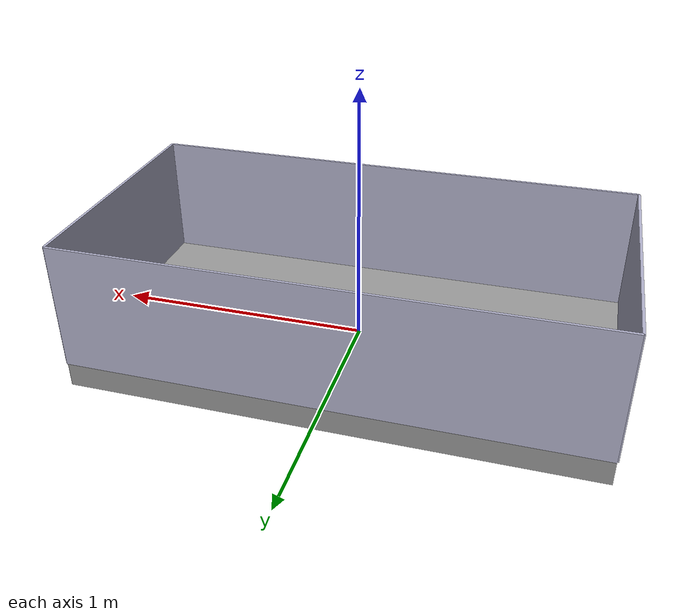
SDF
<sdf version="1.6">
 <world name="swimming_pool">
  <gravity>0 0 -9.81</gravity>
  <physics type="ode">
   <max_step_size>0.001</max_step_size>
   <ode>
    <solver>
     <type>world</type>
     <iters>300</iters>
     <sor>1.3</sor>
     <use_dynamic_moi_rescaling>1</use_dynamic_moi_rescaling>
    </solver>
   </ode>
  </physics>
  <include><uri>model://sun</uri></include>
  <model name="swimming_pool">
   <static>true</static>
   <link name="floor">
    <pose>0.0 0.0 -0.05 0.0 0.0 0.0</pose>
    <inertial>
     <mass>0</mass>
     <inertia><ixx>0</ixx><ixy>0</ixy><ixz>0</ixz><iyy>0</iyy><iyz>0</iyz><izz>0</izz></inertia>
    </inertial>
    <collision name="floor_collision"><geometry><box><size>2.01 1.01 0.1</size></box></geometry></collision>
    <visual name="floor_visual">
     <geometry><box><size>2.01 1.01 0.1</size></box></geometry>
     <material><ambient>0.6 0.6 0.6 1</ambient><diffuse>0.6 0.6 0.6 1</diffuse></material>
    </visual>
   </link>
   <link name="side_x_neg">
    <pose>-1.0055 0.0 0.25 0.0 0.0 0.0</pose>
    <inertial>
     <mass>0</mass>
     <inertia><ixx>0</ixx><ixy>0</ixy><ixz>0</ixz><iyy>0</iyy><iyz>0</iyz><izz>0</izz></inertia>
    </inertial>
    <collision name="side_x_neg_collision"><geometry><box><size>0.01 1.01 0.5</size></box></geometry></collision>
    <visual name="vis">
     <geometry><box><size>0.01 1.01 0.5</size></box></geometry>
     <material><ambient>0.7 0.7 0.8 1</ambient><diffuse>0.7 0.7 0.8 1</diffuse></material>
    </visual>
   </link>
   <link name="side_x_pos">
    <pose>1.0055 0.0 0.25 0.0 0.0 0.0</pose>
    <inertial>
     <mass>0</mass>
     <inertia><ixx>0</ixx><ixy>0</ixy><ixz>0</ixz><iyy>0</iyy><iyz>0</iyz><izz>0</izz></inertia>
    </inertial>
    <collision name="side_x_pos_collision"><geometry><box><size>0.01 1.01 0.5</size></box></geometry></collision>
    <visual name="vis">
     <geometry><box><size>0.01 1.01 0.5</size></box></geometry>
     <material><ambient>0.7 0.7 0.8 1</ambient><diffuse>0.7 0.7 0.8 1</diffuse></material>
    </visual>
   </link>
   <link name="side_y_pos">
    <pose>0.0 0.5055 0.25 0.0 0.0 0.0</pose>
    <inertial>
     <mass>0</mass>
     <inertia><ixx>0</ixx><ixy>0</ixy><ixz>0</ixz><iyy>0</iyy><iyz>0</iyz><izz>0</izz></inertia>
    </inertial>
    <collision name="side_y_pos_collision"><geometry><box><size>2.01 0.01 0.5</size></box></geometry></collision>
    <visual name="vis">
     <geometry><box><size>2.01 0.01 0.5</size></box></geometry>
     <material><ambient>0.7 0.7 0.8 1</ambient><diffuse>0.7 0.7 0.8 1</diffuse></material>
    </visual>
   </link>
   <link name="side_y_neg">
    <pose>0.0 -0.5055 0.25 0.0 0.0 0.0</pose>
    <inertial>
     <mass>0</mass>
     <inertia><ixx>0</ixx><ixy>0</ixy><ixz>0</ixz><iyy>0</iyy><iyz>0</iyz><izz>0</izz></inertia>
    </inertial>
    <collision name="side_y_neg_collision"><geometry><box><size>2.01 0.01 0.5</size></box></geometry></collision>
    <visual name="vis">
     <geometry><box><size>2.01 0.01 0.5</size></box></geometry>
     <material><ambient>0.7 0.7 0.8 1</ambient><diffuse>0.7 0.7 0.8 1</diffuse></material>
    </visual>
   </link>
  </model>
  <plugin name="gazebo_fluids" filename="libFluidSimulator.so">
   <fluidConfiguration>
    <timeStepSize>0.001</timeStepSize>
    <particleRadius>0.025</particleRadius>
    <simulationMethod>4</simulationMethod>
    <gravitation>0 0 -9.81</gravitation>
    <cflMethod>0</cflMethod>
    <cflFactor>1.0</cflFactor>
    <cflMaxTimeStepSize>0.005</cflMaxTimeStepSize>
    <maxIterations>100</maxIterations>
    <maxError>0.05</maxError>
    <maxIterationsV>100</maxIterationsV>
    <maxErrorV>0.1</maxErrorV>
    <enableDivergenceSolver>true</enableDivergenceSolver>
    <velocityUpdateMethod>0</velocityUpdateMethod>
    <boundaryHandlingMethod>0</boundaryHandlingMethod>
    <outputPath>/home/ws/sph_output/</outputPath>
   </fluidConfiguration>
   <fluid><viscosityMethod>2</viscosityMethod><viscosity>0.001</viscosity></fluid>
   <fluidBlock>
    <denseMode>0</denseMode>
    <start>-0.99 -0.49 0.0</start>
    <end>0.99 0.49 0.25</end>
    <initialVelocity>0 0 0</initialVelocity>
   </fluidBlock>
  </plugin>
 </world>
</sdf>
